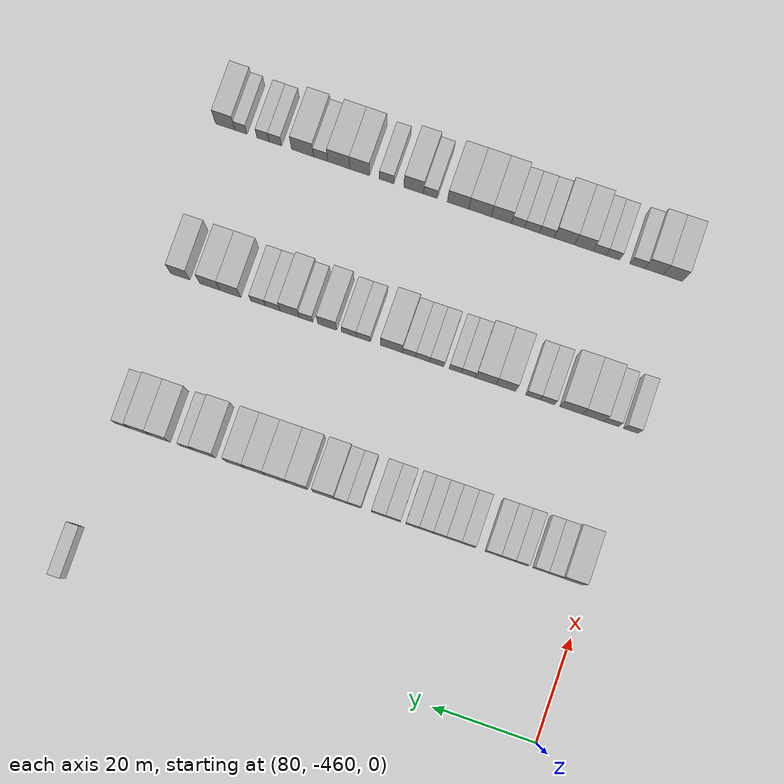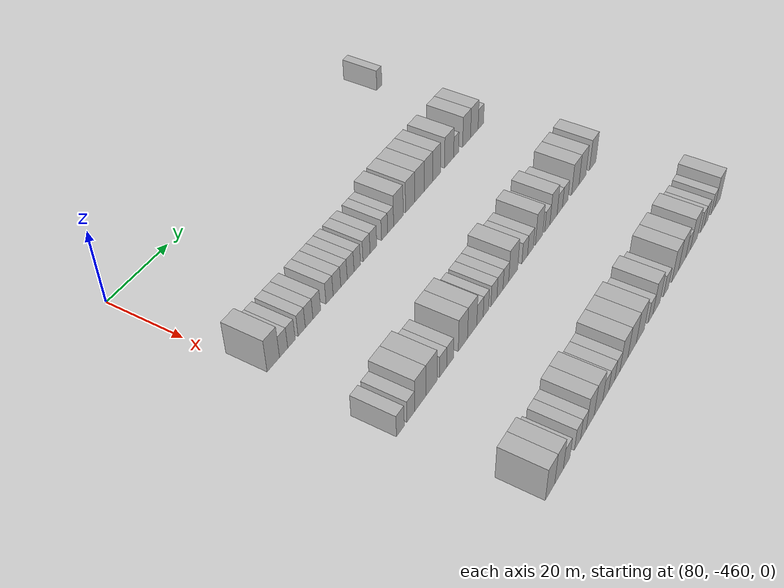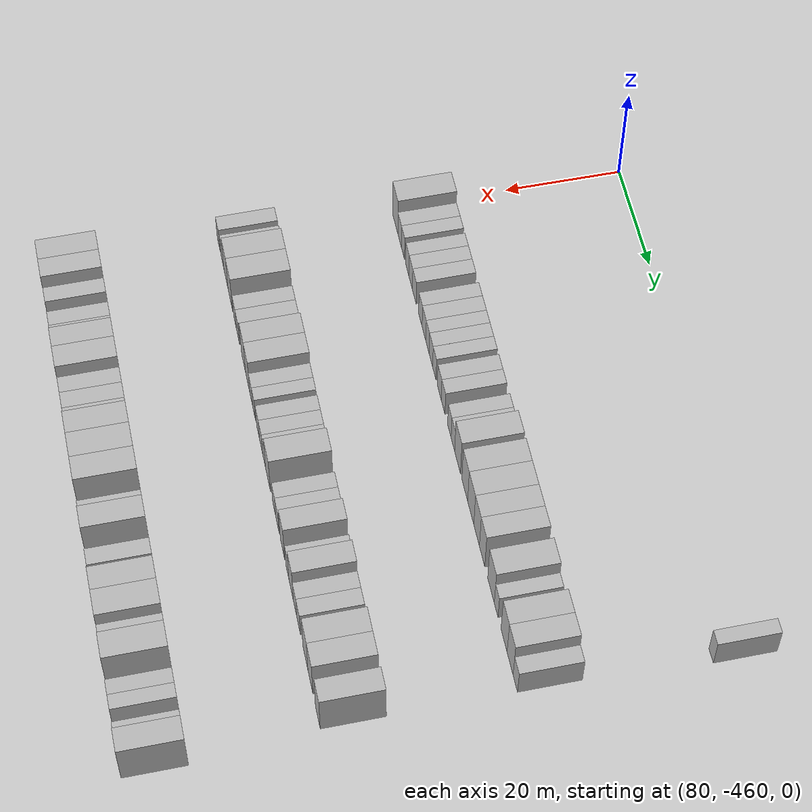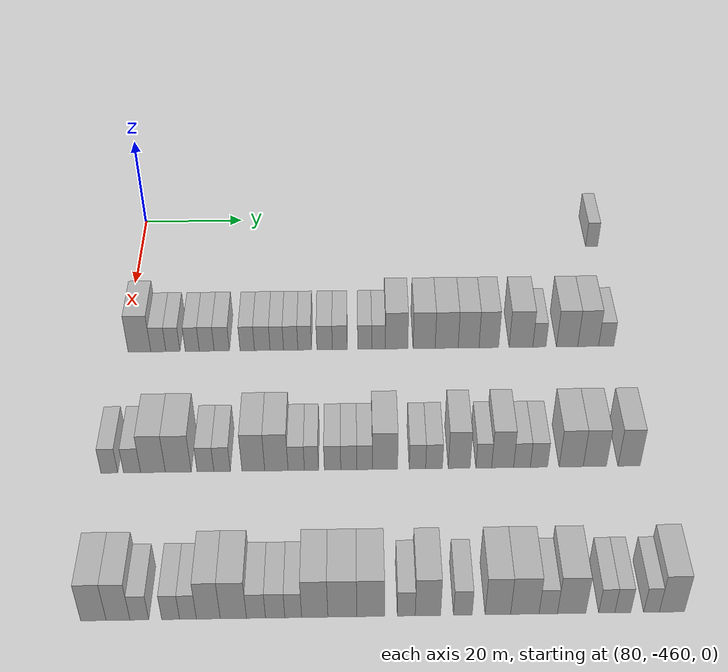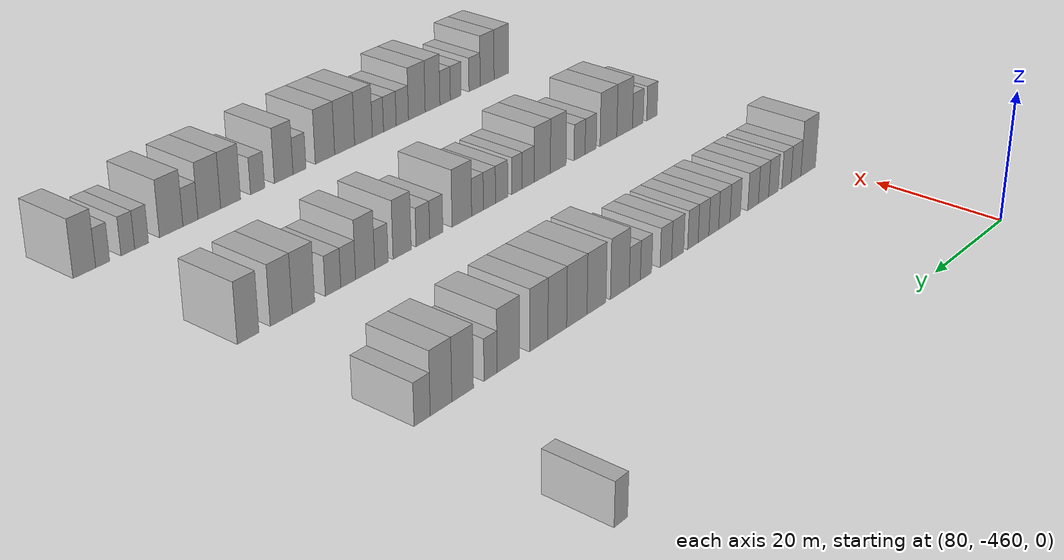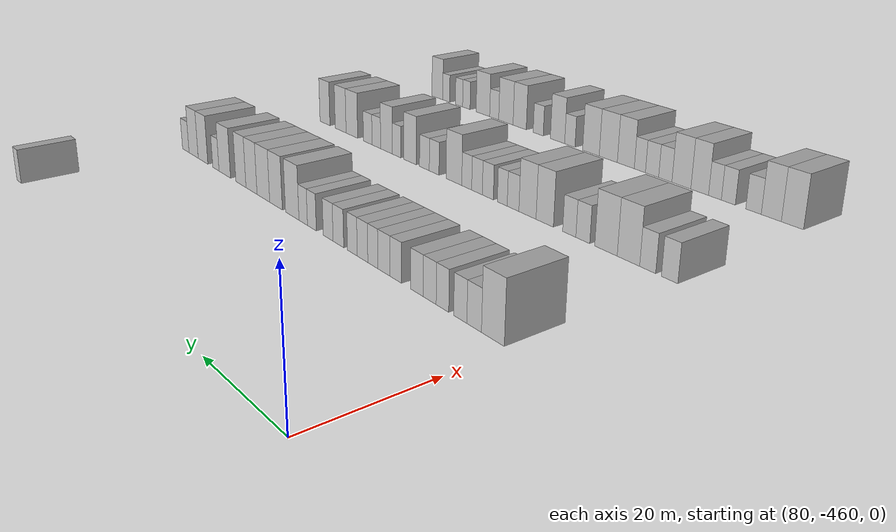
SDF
<sdf version="1.6">
 <world name="default">
  <model name="building_503">
   <static>1</static>
   <pose>85.0000 -367.4415 0 0.000000 0.000000 0.000000</pose>
   <link name="link">
    <pose>0 0 3.00 0 0 0</pose>
    <collision name="collision"><geometry><box><size>10.0000 2.4752 6.0000</size></box></geometry></collision>
    <visual name="visual">
     <cast_shadows>0</cast_shadows>
     <geometry><box><size>10.0000 2.4752 6.0000</size></box></geometry>
     <material>
      <script>
       <uri>model://HANNAS_wall/materials/scripts</uri>
       <uri>model://HANNAS_wall/materials/textures</uri>
       <name>vrc/HANNAS_wall</name>
      </script>
     </material>
    </visual>
   </link>
  </model>
  <model name="building_714">
   <static>1</static>
   <pose>115.0000 -456.8783 0 0.000000 0.000000 0.000000</pose>
   <link name="link">
    <pose>0 0 4.50 0 0 0</pose>
    <collision name="collision"><geometry><box><size>10.0000 4.2435 9.0000</size></box></geometry></collision>
    <visual name="visual">
     <cast_shadows>0</cast_shadows>
     <geometry><box><size>10.0000 4.2435 9.0000</size></box></geometry>
     <material>
      <script>
       <uri>model://HANNAS_wall/materials/scripts</uri>
       <uri>model://HANNAS_wall/materials/textures</uri>
       <name>vrc/HANNAS_wall</name>
      </script>
     </material>
    </visual>
   </link>
  </model>
  <model name="building_715">
   <static>1</static>
   <pose>115.0000 -453.3384 0 0.000000 0.000000 0.000000</pose>
   <link name="link">
    <pose>0 0 3.00 0 0 0</pose>
    <collision name="collision"><geometry><box><size>10.0000 2.8363 6.0000</size></box></geometry></collision>
    <visual name="visual">
     <cast_shadows>0</cast_shadows>
     <geometry><box><size>10.0000 2.8363 6.0000</size></box></geometry>
     <material>
      <script>
       <uri>model://HANNAS_wall/materials/scripts</uri>
       <uri>model://HANNAS_wall/materials/textures</uri>
       <name>vrc/HANNAS_wall</name>
      </script>
     </material>
    </visual>
   </link>
  </model>
  <model name="building_716">
   <static>1</static>
   <pose>115.0000 -450.6026 0 0.000000 0.000000 0.000000</pose>
   <link name="link">
    <pose>0 0 3.00 0 0 0</pose>
    <collision name="collision"><geometry><box><size>10.0000 2.6352 6.0000</size></box></geometry></collision>
    <visual name="visual">
     <cast_shadows>0</cast_shadows>
     <geometry><box><size>10.0000 2.6352 6.0000</size></box></geometry>
     <material>
      <script>
       <uri>model://HANNAS_wall/materials/scripts</uri>
       <uri>model://HANNAS_wall/materials/textures</uri>
       <name>vrc/HANNAS_wall</name>
      </script>
     </material>
    </visual>
   </link>
  </model>
  <model name="building_717">
   <static>1</static>
   <pose>115.0000 -446.9677 0 0.000000 0.000000 0.000000</pose>
   <link name="link">
    <pose>0 0 3.00 0 0 0</pose>
    <collision name="collision"><geometry><box><size>10.0000 2.6348 6.0000</size></box></geometry></collision>
    <visual name="visual">
     <cast_shadows>0</cast_shadows>
     <geometry><box><size>10.0000 2.6348 6.0000</size></box></geometry>
     <material>
      <script>
       <uri>model://HANNAS_wall/materials/scripts</uri>
       <uri>model://HANNAS_wall/materials/textures</uri>
       <name>vrc/HANNAS_wall</name>
      </script>
     </material>
    </visual>
   </link>
  </model>
  <model name="building_718">
   <static>1</static>
   <pose>115.0000 -444.2566 0 0.000000 0.000000 0.000000</pose>
   <link name="link">
    <pose>0 0 3.00 0 0 0</pose>
    <collision name="collision"><geometry><box><size>10.0000 2.7873 6.0000</size></box></geometry></collision>
    <visual name="visual">
     <cast_shadows>0</cast_shadows>
     <geometry><box><size>10.0000 2.7873 6.0000</size></box></geometry>
     <material>
      <script>
       <uri>model://HANNAS_wall/materials/scripts</uri>
       <uri>model://HANNAS_wall/materials/textures</uri>
       <name>vrc/HANNAS_wall</name>
      </script>
     </material>
    </visual>
   </link>
  </model>
  <model name="building_719">
   <static>1</static>
   <pose>115.0000 -441.4280 0 0.000000 0.000000 0.000000</pose>
   <link name="link">
    <pose>0 0 3.00 0 0 0</pose>
    <collision name="collision"><geometry><box><size>10.0000 2.8700 6.0000</size></box></geometry></collision>
    <visual name="visual">
     <cast_shadows>0</cast_shadows>
     <geometry><box><size>10.0000 2.8700 6.0000</size></box></geometry>
     <material>
      <script>
       <uri>model://HANNAS_wall/materials/scripts</uri>
       <uri>model://HANNAS_wall/materials/textures</uri>
       <name>vrc/HANNAS_wall</name>
      </script>
     </material>
    </visual>
   </link>
  </model>
  <model name="building_720">
   <static>1</static>
   <pose>115.0000 -436.6398 0 0.000000 0.000000 0.000000</pose>
   <link name="link">
    <pose>0 0 3.00 0 0 0</pose>
    <collision name="collision"><geometry><box><size>10.0000 2.7066 6.0000</size></box></geometry></collision>
    <visual name="visual">
     <cast_shadows>0</cast_shadows>
     <geometry><box><size>10.0000 2.7066 6.0000</size></box></geometry>
     <material>
      <script>
       <uri>model://HANNAS_wall/materials/scripts</uri>
       <uri>model://HANNAS_wall/materials/textures</uri>
       <name>vrc/HANNAS_wall</name>
      </script>
     </material>
    </visual>
   </link>
  </model>
  <model name="building_721">
   <static>1</static>
   <pose>115.0000 -433.8154 0 0.000000 0.000000 0.000000</pose>
   <link name="link">
    <pose>0 0 3.00 0 0 0</pose>
    <collision name="collision"><geometry><box><size>10.0000 2.9422 6.0000</size></box></geometry></collision>
    <visual name="visual">
     <cast_shadows>0</cast_shadows>
     <geometry><box><size>10.0000 2.9422 6.0000</size></box></geometry>
     <material>
      <script>
       <uri>model://HANNAS_wall/materials/scripts</uri>
       <uri>model://HANNAS_wall/materials/textures</uri>
       <name>vrc/HANNAS_wall</name>
      </script>
     </material>
    </visual>
   </link>
  </model>
  <model name="building_722">
   <static>1</static>
   <pose>115.0000 -431.0841 0 0.000000 0.000000 0.000000</pose>
   <link name="link">
    <pose>0 0 3.00 0 0 0</pose>
    <collision name="collision"><geometry><box><size>10.0000 2.5202 6.0000</size></box></geometry></collision>
    <visual name="visual">
     <cast_shadows>0</cast_shadows>
     <geometry><box><size>10.0000 2.5202 6.0000</size></box></geometry>
     <material>
      <script>
       <uri>model://HANNAS_wall/materials/scripts</uri>
       <uri>model://HANNAS_wall/materials/textures</uri>
       <name>vrc/HANNAS_wall</name>
      </script>
     </material>
    </visual>
   </link>
  </model>
  <model name="building_723">
   <static>1</static>
   <pose>115.0000 -428.4706 0 0.000000 0.000000 0.000000</pose>
   <link name="link">
    <pose>0 0 3.00 0 0 0</pose>
    <collision name="collision"><geometry><box><size>10.0000 2.7069 6.0000</size></box></geometry></collision>
    <visual name="visual">
     <cast_shadows>0</cast_shadows>
     <geometry><box><size>10.0000 2.7069 6.0000</size></box></geometry>
     <material>
      <script>
       <uri>model://HANNAS_wall/materials/scripts</uri>
       <uri>model://HANNAS_wall/materials/textures</uri>
       <name>vrc/HANNAS_wall</name>
      </script>
     </material>
    </visual>
   </link>
  </model>
  <model name="building_724">
   <static>1</static>
   <pose>115.0000 -425.8266 0 0.000000 0.000000 0.000000</pose>
   <link name="link">
    <pose>0 0 3.00 0 0 0</pose>
    <collision name="collision"><geometry><box><size>10.0000 2.5810 6.0000</size></box></geometry></collision>
    <visual name="visual">
     <cast_shadows>0</cast_shadows>
     <geometry><box><size>10.0000 2.5810 6.0000</size></box></geometry>
     <material>
      <script>
       <uri>model://HANNAS_wall/materials/scripts</uri>
       <uri>model://HANNAS_wall/materials/textures</uri>
       <name>vrc/HANNAS_wall</name>
      </script>
     </material>
    </visual>
   </link>
  </model>
  <model name="building_725">
   <static>1</static>
   <pose>115.0000 -422.0777 0 0.000000 0.000000 0.000000</pose>
   <link name="link">
    <pose>0 0 3.00 0 0 0</pose>
    <collision name="collision"><geometry><box><size>10.0000 2.9168 6.0000</size></box></geometry></collision>
    <visual name="visual">
     <cast_shadows>0</cast_shadows>
     <geometry><box><size>10.0000 2.9168 6.0000</size></box></geometry>
     <material>
      <script>
       <uri>model://HANNAS_wall/materials/scripts</uri>
       <uri>model://HANNAS_wall/materials/textures</uri>
       <name>vrc/HANNAS_wall</name>
      </script>
     </material>
    </visual>
   </link>
  </model>
  <model name="building_726">
   <static>1</static>
   <pose>115.0000 -419.2322 0 0.000000 0.000000 0.000000</pose>
   <link name="link">
    <pose>0 0 3.00 0 0 0</pose>
    <collision name="collision"><geometry><box><size>10.0000 2.7742 6.0000</size></box></geometry></collision>
    <visual name="visual">
     <cast_shadows>0</cast_shadows>
     <geometry><box><size>10.0000 2.7742 6.0000</size></box></geometry>
     <material>
      <script>
       <uri>model://HANNAS_wall/materials/scripts</uri>
       <uri>model://HANNAS_wall/materials/textures</uri>
       <name>vrc/HANNAS_wall</name>
      </script>
     </material>
    </visual>
   </link>
  </model>
  <model name="building_727">
   <static>1</static>
   <pose>115.0000 -414.5325 0 0.000000 0.000000 0.000000</pose>
   <link name="link">
    <pose>0 0 3.00 0 0 0</pose>
    <collision name="collision"><geometry><box><size>10.0000 2.6252 6.0000</size></box></geometry></collision>
    <visual name="visual">
     <cast_shadows>0</cast_shadows>
     <geometry><box><size>10.0000 2.6252 6.0000</size></box></geometry>
     <material>
      <script>
       <uri>model://HANNAS_wall/materials/scripts</uri>
       <uri>model://HANNAS_wall/materials/textures</uri>
       <name>vrc/HANNAS_wall</name>
      </script>
     </material>
    </visual>
   </link>
  </model>
  <model name="building_728">
   <static>1</static>
   <pose>115.0000 -411.9328 0 0.000000 0.000000 0.000000</pose>
   <link name="link">
    <pose>0 0 3.00 0 0 0</pose>
    <collision name="collision"><geometry><box><size>10.0000 2.5741 6.0000</size></box></geometry></collision>
    <visual name="visual">
     <cast_shadows>0</cast_shadows>
     <geometry><box><size>10.0000 2.5741 6.0000</size></box></geometry>
     <material>
      <script>
       <uri>model://HANNAS_wall/materials/scripts</uri>
       <uri>model://HANNAS_wall/materials/textures</uri>
       <name>vrc/HANNAS_wall</name>
      </script>
     </material>
    </visual>
   </link>
  </model>
  <model name="building_729">
   <static>1</static>
   <pose>115.0000 -408.5332 0 0.000000 0.000000 0.000000</pose>
   <link name="link">
    <pose>0 0 4.50 0 0 0</pose>
    <collision name="collision"><geometry><box><size>10.0000 4.2251 9.0000</size></box></geometry></collision>
    <visual name="visual">
     <cast_shadows>0</cast_shadows>
     <geometry><box><size>10.0000 4.2251 9.0000</size></box></geometry>
     <material>
      <script>
       <uri>model://HANNAS_wall/materials/scripts</uri>
       <uri>model://HANNAS_wall/materials/textures</uri>
       <name>vrc/HANNAS_wall</name>
      </script>
     </material>
    </visual>
   </link>
  </model>
  <model name="building_730">
   <static>1</static>
   <pose>115.0000 -403.3415 0 0.000000 0.000000 0.000000</pose>
   <link name="link">
    <pose>0 0 4.50 0 0 0</pose>
    <collision name="collision"><geometry><box><size>10.0000 4.1584 9.0000</size></box></geometry></collision>
    <visual name="visual">
     <cast_shadows>0</cast_shadows>
     <geometry><box><size>10.0000 4.1584 9.0000</size></box></geometry>
     <material>
      <script>
       <uri>model://HANNAS_wall/materials/scripts</uri>
       <uri>model://HANNAS_wall/materials/textures</uri>
       <name>vrc/HANNAS_wall</name>
      </script>
     </material>
    </visual>
   </link>
  </model>
  <model name="building_731">
   <static>1</static>
   <pose>115.0000 -399.0946 0 0.000000 0.000000 0.000000</pose>
   <link name="link">
    <pose>0 0 4.50 0 0 0</pose>
    <collision name="collision"><geometry><box><size>10.0000 4.3356 9.0000</size></box></geometry></collision>
    <visual name="visual">
     <cast_shadows>0</cast_shadows>
     <geometry><box><size>10.0000 4.3356 9.0000</size></box></geometry>
     <material>
      <script>
       <uri>model://HANNAS_wall/materials/scripts</uri>
       <uri>model://HANNAS_wall/materials/textures</uri>
       <name>vrc/HANNAS_wall</name>
      </script>
     </material>
    </visual>
   </link>
  </model>
  <model name="building_732">
   <static>1</static>
   <pose>115.0000 -394.9612 0 0.000000 0.000000 0.000000</pose>
   <link name="link">
    <pose>0 0 4.50 0 0 0</pose>
    <collision name="collision"><geometry><box><size>10.0000 3.9311 9.0000</size></box></geometry></collision>
    <visual name="visual">
     <cast_shadows>0</cast_shadows>
     <geometry><box><size>10.0000 3.9311 9.0000</size></box></geometry>
     <material>
      <script>
       <uri>model://HANNAS_wall/materials/scripts</uri>
       <uri>model://HANNAS_wall/materials/textures</uri>
       <name>vrc/HANNAS_wall</name>
      </script>
     </material>
    </visual>
   </link>
  </model>
  <model name="building_733">
   <static>1</static>
   <pose>115.0000 -391.1428 0 0.000000 0.000000 0.000000</pose>
   <link name="link">
    <pose>0 0 4.50 0 0 0</pose>
    <collision name="collision"><geometry><box><size>10.0000 3.7057 9.0000</size></box></geometry></collision>
    <visual name="visual">
     <cast_shadows>0</cast_shadows>
     <geometry><box><size>10.0000 3.7057 9.0000</size></box></geometry>
     <material>
      <script>
       <uri>model://HANNAS_wall/materials/scripts</uri>
       <uri>model://HANNAS_wall/materials/textures</uri>
       <name>vrc/HANNAS_wall</name>
      </script>
     </material>
    </visual>
   </link>
  </model>
  <model name="building_734">
   <static>1</static>
   <pose>115.0000 -385.0547 0 0.000000 0.000000 0.000000</pose>
   <link name="link">
    <pose>0 0 4.50 0 0 0</pose>
    <collision name="collision"><geometry><box><size>10.0000 4.4705 9.0000</size></box></geometry></collision>
    <visual name="visual">
     <cast_shadows>0</cast_shadows>
     <geometry><box><size>10.0000 4.4705 9.0000</size></box></geometry>
     <material>
      <script>
       <uri>model://HANNAS_wall/materials/scripts</uri>
       <uri>model://HANNAS_wall/materials/textures</uri>
       <name>vrc/HANNAS_wall</name>
      </script>
     </material>
    </visual>
   </link>
  </model>
  <model name="building_735">
   <static>1</static>
   <pose>115.0000 -381.5741 0 0.000000 0.000000 0.000000</pose>
   <link name="link">
    <pose>0 0 3.00 0 0 0</pose>
    <collision name="collision"><geometry><box><size>10.0000 2.4907 6.0000</size></box></geometry></collision>
    <visual name="visual">
     <cast_shadows>0</cast_shadows>
     <geometry><box><size>10.0000 2.4907 6.0000</size></box></geometry>
     <material>
      <script>
       <uri>model://HANNAS_wall/materials/scripts</uri>
       <uri>model://HANNAS_wall/materials/textures</uri>
       <name>vrc/HANNAS_wall</name>
      </script>
     </material>
    </visual>
   </link>
  </model>
  <model name="building_736">
   <static>1</static>
   <pose>115.0000 -376.3211 0 0.000000 0.000000 0.000000</pose>
   <link name="link">
    <pose>0 0 4.50 0 0 0</pose>
    <collision name="collision"><geometry><box><size>10.0000 4.0153 9.0000</size></box></geometry></collision>
    <visual name="visual">
     <cast_shadows>0</cast_shadows>
     <geometry><box><size>10.0000 4.0153 9.0000</size></box></geometry>
     <material>
      <script>
       <uri>model://HANNAS_wall/materials/scripts</uri>
       <uri>model://HANNAS_wall/materials/textures</uri>
       <name>vrc/HANNAS_wall</name>
      </script>
     </material>
    </visual>
   </link>
  </model>
  <model name="building_737">
   <static>1</static>
   <pose>115.0000 -372.3457 0 0.000000 0.000000 0.000000</pose>
   <link name="link">
    <pose>0 0 4.50 0 0 0</pose>
    <collision name="collision"><geometry><box><size>10.0000 3.9354 9.0000</size></box></geometry></collision>
    <visual name="visual">
     <cast_shadows>0</cast_shadows>
     <geometry><box><size>10.0000 3.9354 9.0000</size></box></geometry>
     <material>
      <script>
       <uri>model://HANNAS_wall/materials/scripts</uri>
       <uri>model://HANNAS_wall/materials/textures</uri>
       <name>vrc/HANNAS_wall</name>
      </script>
     </material>
    </visual>
   </link>
  </model>
  <model name="building_738">
   <static>1</static>
   <pose>115.0000 -368.9343 0 0.000000 0.000000 0.000000</pose>
   <link name="link">
    <pose>0 0 3.00 0 0 0</pose>
    <collision name="collision"><geometry><box><size>10.0000 2.8873 6.0000</size></box></geometry></collision>
    <visual name="visual">
     <cast_shadows>0</cast_shadows>
     <geometry><box><size>10.0000 2.8873 6.0000</size></box></geometry>
     <material>
      <script>
       <uri>model://HANNAS_wall/materials/scripts</uri>
       <uri>model://HANNAS_wall/materials/textures</uri>
       <name>vrc/HANNAS_wall</name>
      </script>
     </material>
    </visual>
   </link>
  </model>
  <model name="building_951">
   <static>1</static>
   <pose>145.0000 -458.5672 0 0.000000 0.000000 0.000000</pose>
   <link name="link">
    <pose>0 0 3.00 0 0 0</pose>
    <collision name="collision"><geometry><box><size>10.0000 2.8656 6.0000</size></box></geometry></collision>
    <visual name="visual">
     <cast_shadows>0</cast_shadows>
     <geometry><box><size>10.0000 2.8656 6.0000</size></box></geometry>
     <material>
      <script>
       <uri>model://HANNAS_wall/materials/scripts</uri>
       <uri>model://HANNAS_wall/materials/textures</uri>
       <name>vrc/HANNAS_wall</name>
      </script>
     </material>
    </visual>
   </link>
  </model>
  <model name="building_952">
   <static>1</static>
   <pose>145.0000 -454.6830 0 0.000000 0.000000 0.000000</pose>
   <link name="link">
    <pose>0 0 3.00 0 0 0</pose>
    <collision name="collision"><geometry><box><size>10.0000 2.9029 6.0000</size></box></geometry></collision>
    <visual name="visual">
     <cast_shadows>0</cast_shadows>
     <geometry><box><size>10.0000 2.9029 6.0000</size></box></geometry>
     <material>
      <script>
       <uri>model://HANNAS_wall/materials/scripts</uri>
       <uri>model://HANNAS_wall/materials/textures</uri>
       <name>vrc/HANNAS_wall</name>
      </script>
     </material>
    </visual>
   </link>
  </model>
  <model name="building_953">
   <static>1</static>
   <pose>145.0000 -451.1205 0 0.000000 0.000000 0.000000</pose>
   <link name="link">
    <pose>0 0 4.50 0 0 0</pose>
    <collision name="collision"><geometry><box><size>10.0000 4.2221 9.0000</size></box></geometry></collision>
    <visual name="visual">
     <cast_shadows>0</cast_shadows>
     <geometry><box><size>10.0000 4.2221 9.0000</size></box></geometry>
     <material>
      <script>
       <uri>model://HANNAS_wall/materials/scripts</uri>
       <uri>model://HANNAS_wall/materials/textures</uri>
       <name>vrc/HANNAS_wall</name>
      </script>
     </material>
    </visual>
   </link>
  </model>
  <model name="building_954">
   <static>1</static>
   <pose>145.0000 -446.7995 0 0.000000 0.000000 0.000000</pose>
   <link name="link">
    <pose>0 0 4.50 0 0 0</pose>
    <collision name="collision"><geometry><box><size>10.0000 4.4199 9.0000</size></box></geometry></collision>
    <visual name="visual">
     <cast_shadows>0</cast_shadows>
     <geometry><box><size>10.0000 4.4199 9.0000</size></box></geometry>
     <material>
      <script>
       <uri>model://HANNAS_wall/materials/scripts</uri>
       <uri>model://HANNAS_wall/materials/textures</uri>
       <name>vrc/HANNAS_wall</name>
      </script>
     </material>
    </visual>
   </link>
  </model>
  <model name="building_955">
   <static>1</static>
   <pose>145.0000 -442.1548 0 0.000000 0.000000 0.000000</pose>
   <link name="link">
    <pose>0 0 3.00 0 0 0</pose>
    <collision name="collision"><geometry><box><size>10.0000 2.8695 6.0000</size></box></geometry></collision>
    <visual name="visual">
     <cast_shadows>0</cast_shadows>
     <geometry><box><size>10.0000 2.8695 6.0000</size></box></geometry>
     <material>
      <script>
       <uri>model://HANNAS_wall/materials/scripts</uri>
       <uri>model://HANNAS_wall/materials/textures</uri>
       <name>vrc/HANNAS_wall</name>
      </script>
     </material>
    </visual>
   </link>
  </model>
  <model name="building_956">
   <static>1</static>
   <pose>145.0000 -439.3157 0 0.000000 0.000000 0.000000</pose>
   <link name="link">
    <pose>0 0 3.00 0 0 0</pose>
    <collision name="collision"><geometry><box><size>10.0000 2.8087 6.0000</size></box></geometry></collision>
    <visual name="visual">
     <cast_shadows>0</cast_shadows>
     <geometry><box><size>10.0000 2.8087 6.0000</size></box></geometry>
     <material>
      <script>
       <uri>model://HANNAS_wall/materials/scripts</uri>
       <uri>model://HANNAS_wall/materials/textures</uri>
       <name>vrc/HANNAS_wall</name>
      </script>
     </material>
    </visual>
   </link>
  </model>
  <model name="building_957">
   <static>1</static>
   <pose>145.0000 -433.9685 0 0.000000 0.000000 0.000000</pose>
   <link name="link">
    <pose>0 0 4.50 0 0 0</pose>
    <collision name="collision"><geometry><box><size>10.0000 3.8858 9.0000</size></box></geometry></collision>
    <visual name="visual">
     <cast_shadows>0</cast_shadows>
     <geometry><box><size>10.0000 3.8858 9.0000</size></box></geometry>
     <material>
      <script>
       <uri>model://HANNAS_wall/materials/scripts</uri>
       <uri>model://HANNAS_wall/materials/textures</uri>
       <name>vrc/HANNAS_wall</name>
      </script>
     </material>
    </visual>
   </link>
  </model>
  <model name="building_958">
   <static>1</static>
   <pose>145.0000 -430.0322 0 0.000000 0.000000 0.000000</pose>
   <link name="link">
    <pose>0 0 4.50 0 0 0</pose>
    <collision name="collision"><geometry><box><size>10.0000 3.9868 9.0000</size></box></geometry></collision>
    <visual name="visual">
     <cast_shadows>0</cast_shadows>
     <geometry><box><size>10.0000 3.9868 9.0000</size></box></geometry>
     <material>
      <script>
       <uri>model://HANNAS_wall/materials/scripts</uri>
       <uri>model://HANNAS_wall/materials/textures</uri>
       <name>vrc/HANNAS_wall</name>
      </script>
     </material>
    </visual>
   </link>
  </model>
  <model name="building_959">
   <static>1</static>
   <pose>145.0000 -426.6387 0 0.000000 0.000000 0.000000</pose>
   <link name="link">
    <pose>0 0 3.00 0 0 0</pose>
    <collision name="collision"><geometry><box><size>10.0000 2.8001 6.0000</size></box></geometry></collision>
    <visual name="visual">
     <cast_shadows>0</cast_shadows>
     <geometry><box><size>10.0000 2.8001 6.0000</size></box></geometry>
     <material>
      <script>
       <uri>model://HANNAS_wall/materials/scripts</uri>
       <uri>model://HANNAS_wall/materials/textures</uri>
       <name>vrc/HANNAS_wall</name>
      </script>
     </material>
    </visual>
   </link>
  </model>
  <model name="building_960">
   <static>1</static>
   <pose>145.0000 -424.0277 0 0.000000 0.000000 0.000000</pose>
   <link name="link">
    <pose>0 0 3.00 0 0 0</pose>
    <collision name="collision"><geometry><box><size>10.0000 2.4220 6.0000</size></box></geometry></collision>
    <visual name="visual">
     <cast_shadows>0</cast_shadows>
     <geometry><box><size>10.0000 2.4220 6.0000</size></box></geometry>
     <material>
      <script>
       <uri>model://HANNAS_wall/materials/scripts</uri>
       <uri>model://HANNAS_wall/materials/textures</uri>
       <name>vrc/HANNAS_wall</name>
      </script>
     </material>
    </visual>
   </link>
  </model>
  <model name="building_961">
   <static>1</static>
   <pose>145.0000 -420.4117 0 0.000000 0.000000 0.000000</pose>
   <link name="link">
    <pose>0 0 3.00 0 0 0</pose>
    <collision name="collision"><geometry><box><size>10.0000 2.8100 6.0000</size></box></geometry></collision>
    <visual name="visual">
     <cast_shadows>0</cast_shadows>
     <geometry><box><size>10.0000 2.8100 6.0000</size></box></geometry>
     <material>
      <script>
       <uri>model://HANNAS_wall/materials/scripts</uri>
       <uri>model://HANNAS_wall/materials/textures</uri>
       <name>vrc/HANNAS_wall</name>
      </script>
     </material>
    </visual>
   </link>
  </model>
  <model name="building_962">
   <static>1</static>
   <pose>145.0000 -417.6250 0 0.000000 0.000000 0.000000</pose>
   <link name="link">
    <pose>0 0 3.00 0 0 0</pose>
    <collision name="collision"><geometry><box><size>10.0000 2.7634 6.0000</size></box></geometry></collision>
    <visual name="visual">
     <cast_shadows>0</cast_shadows>
     <geometry><box><size>10.0000 2.7634 6.0000</size></box></geometry>
     <material>
      <script>
       <uri>model://HANNAS_wall/materials/scripts</uri>
       <uri>model://HANNAS_wall/materials/textures</uri>
       <name>vrc/HANNAS_wall</name>
      </script>
     </material>
    </visual>
   </link>
  </model>
  <model name="building_963">
   <static>1</static>
   <pose>145.0000 -414.9228 0 0.000000 0.000000 0.000000</pose>
   <link name="link">
    <pose>0 0 3.00 0 0 0</pose>
    <collision name="collision"><geometry><box><size>10.0000 2.6410 6.0000</size></box></geometry></collision>
    <visual name="visual">
     <cast_shadows>0</cast_shadows>
     <geometry><box><size>10.0000 2.6410 6.0000</size></box></geometry>
     <material>
      <script>
       <uri>model://HANNAS_wall/materials/scripts</uri>
       <uri>model://HANNAS_wall/materials/textures</uri>
       <name>vrc/HANNAS_wall</name>
      </script>
     </material>
    </visual>
   </link>
  </model>
  <model name="building_964">
   <static>1</static>
   <pose>145.0000 -411.4430 0 0.000000 0.000000 0.000000</pose>
   <link name="link">
    <pose>0 0 4.50 0 0 0</pose>
    <collision name="collision"><geometry><box><size>10.0000 4.3187 9.0000</size></box></geometry></collision>
    <visual name="visual">
     <cast_shadows>0</cast_shadows>
     <geometry><box><size>10.0000 4.3187 9.0000</size></box></geometry>
     <material>
      <script>
       <uri>model://HANNAS_wall/materials/scripts</uri>
       <uri>model://HANNAS_wall/materials/textures</uri>
       <name>vrc/HANNAS_wall</name>
      </script>
     </material>
    </visual>
   </link>
  </model>
  <model name="building_965">
   <static>1</static>
   <pose>145.0000 -405.8777 0 0.000000 0.000000 0.000000</pose>
   <link name="link">
    <pose>0 0 3.00 0 0 0</pose>
    <collision name="collision"><geometry><box><size>10.0000 2.8120 6.0000</size></box></geometry></collision>
    <visual name="visual">
     <cast_shadows>0</cast_shadows>
     <geometry><box><size>10.0000 2.8120 6.0000</size></box></geometry>
     <material>
      <script>
       <uri>model://HANNAS_wall/materials/scripts</uri>
       <uri>model://HANNAS_wall/materials/textures</uri>
       <name>vrc/HANNAS_wall</name>
      </script>
     </material>
    </visual>
   </link>
  </model>
  <model name="building_966">
   <static>1</static>
   <pose>145.0000 -403.0285 0 0.000000 0.000000 0.000000</pose>
   <link name="link">
    <pose>0 0 3.00 0 0 0</pose>
    <collision name="collision"><geometry><box><size>10.0000 2.8864 6.0000</size></box></geometry></collision>
    <visual name="visual">
     <cast_shadows>0</cast_shadows>
     <geometry><box><size>10.0000 2.8864 6.0000</size></box></geometry>
     <material>
      <script>
       <uri>model://HANNAS_wall/materials/scripts</uri>
       <uri>model://HANNAS_wall/materials/textures</uri>
       <name>vrc/HANNAS_wall</name>
      </script>
     </material>
    </visual>
   </link>
  </model>
  <model name="building_967">
   <static>1</static>
   <pose>145.0000 -398.7162 0 0.000000 0.000000 0.000000</pose>
   <link name="link">
    <pose>0 0 4.50 0 0 0</pose>
    <collision name="collision"><geometry><box><size>10.0000 3.7381 9.0000</size></box></geometry></collision>
    <visual name="visual">
     <cast_shadows>0</cast_shadows>
     <geometry><box><size>10.0000 3.7381 9.0000</size></box></geometry>
     <material>
      <script>
       <uri>model://HANNAS_wall/materials/scripts</uri>
       <uri>model://HANNAS_wall/materials/textures</uri>
       <name>vrc/HANNAS_wall</name>
      </script>
     </material>
    </visual>
   </link>
  </model>
  <model name="building_968">
   <static>1</static>
   <pose>145.0000 -394.4947 0 0.000000 0.000000 0.000000</pose>
   <link name="link">
    <pose>0 0 3.00 0 0 0</pose>
    <collision name="collision"><geometry><box><size>10.0000 2.7049 6.0000</size></box></geometry></collision>
    <visual name="visual">
     <cast_shadows>0</cast_shadows>
     <geometry><box><size>10.0000 2.7049 6.0000</size></box></geometry>
     <material>
      <script>
       <uri>model://HANNAS_wall/materials/scripts</uri>
       <uri>model://HANNAS_wall/materials/textures</uri>
       <name>vrc/HANNAS_wall</name>
      </script>
     </material>
    </visual>
   </link>
  </model>
  <model name="building_969">
   <static>1</static>
   <pose>145.0000 -391.2525 0 0.000000 0.000000 0.000000</pose>
   <link name="link">
    <pose>0 0 4.50 0 0 0</pose>
    <collision name="collision"><geometry><box><size>10.0000 3.7796 9.0000</size></box></geometry></collision>
    <visual name="visual">
     <cast_shadows>0</cast_shadows>
     <geometry><box><size>10.0000 3.7796 9.0000</size></box></geometry>
     <material>
      <script>
       <uri>model://HANNAS_wall/materials/scripts</uri>
       <uri>model://HANNAS_wall/materials/textures</uri>
       <name>vrc/HANNAS_wall</name>
      </script>
     </material>
    </visual>
   </link>
  </model>
  <model name="building_970">
   <static>1</static>
   <pose>145.0000 -387.9256 0 0.000000 0.000000 0.000000</pose>
   <link name="link">
    <pose>0 0 3.00 0 0 0</pose>
    <collision name="collision"><geometry><box><size>10.0000 2.8741 6.0000</size></box></geometry></collision>
    <visual name="visual">
     <cast_shadows>0</cast_shadows>
     <geometry><box><size>10.0000 2.8741 6.0000</size></box></geometry>
     <material>
      <script>
       <uri>model://HANNAS_wall/materials/scripts</uri>
       <uri>model://HANNAS_wall/materials/textures</uri>
       <name>vrc/HANNAS_wall</name>
      </script>
     </material>
    </visual>
   </link>
  </model>
  <model name="building_971">
   <static>1</static>
   <pose>145.0000 -385.0101 0 0.000000 0.000000 0.000000</pose>
   <link name="link">
    <pose>0 0 3.00 0 0 0</pose>
    <collision name="collision"><geometry><box><size>10.0000 2.9569 6.0000</size></box></geometry></collision>
    <visual name="visual">
     <cast_shadows>0</cast_shadows>
     <geometry><box><size>10.0000 2.9569 6.0000</size></box></geometry>
     <material>
      <script>
       <uri>model://HANNAS_wall/materials/scripts</uri>
       <uri>model://HANNAS_wall/materials/textures</uri>
       <name>vrc/HANNAS_wall</name>
      </script>
     </material>
    </visual>
   </link>
  </model>
  <model name="building_972">
   <static>1</static>
   <pose>145.0000 -379.4606 0 0.000000 0.000000 0.000000</pose>
   <link name="link">
    <pose>0 0 4.50 0 0 0</pose>
    <collision name="collision"><geometry><box><size>10.0000 4.1421 9.0000</size></box></geometry></collision>
    <visual name="visual">
     <cast_shadows>0</cast_shadows>
     <geometry><box><size>10.0000 4.1421 9.0000</size></box></geometry>
     <material>
      <script>
       <uri>model://HANNAS_wall/materials/scripts</uri>
       <uri>model://HANNAS_wall/materials/textures</uri>
       <name>vrc/HANNAS_wall</name>
      </script>
     </material>
    </visual>
   </link>
  </model>
  <model name="building_973">
   <static>1</static>
   <pose>145.0000 -375.3927 0 0.000000 0.000000 0.000000</pose>
   <link name="link">
    <pose>0 0 4.50 0 0 0</pose>
    <collision name="collision"><geometry><box><size>10.0000 3.9939 9.0000</size></box></geometry></collision>
    <visual name="visual">
     <cast_shadows>0</cast_shadows>
     <geometry><box><size>10.0000 3.9939 9.0000</size></box></geometry>
     <material>
      <script>
       <uri>model://HANNAS_wall/materials/scripts</uri>
       <uri>model://HANNAS_wall/materials/textures</uri>
       <name>vrc/HANNAS_wall</name>
      </script>
     </material>
    </visual>
   </link>
  </model>
  <model name="building_974">
   <static>1</static>
   <pose>145.0000 -369.4916 0 0.000000 0.000000 0.000000</pose>
   <link name="link">
    <pose>0 0 4.50 0 0 0</pose>
    <collision name="collision"><geometry><box><size>10.0000 3.8082 9.0000</size></box></geometry></collision>
    <visual name="visual">
     <cast_shadows>0</cast_shadows>
     <geometry><box><size>10.0000 3.8082 9.0000</size></box></geometry>
     <material>
      <script>
       <uri>model://HANNAS_wall/materials/scripts</uri>
       <uri>model://HANNAS_wall/materials/textures</uri>
       <name>vrc/HANNAS_wall</name>
      </script>
     </material>
    </visual>
   </link>
  </model>
  <model name="building_1189">
   <static>1</static>
   <pose>175.0000 -457.0465 0 0.000000 0.000000 0.000000</pose>
   <link name="link">
    <pose>0 0 4.50 0 0 0</pose>
    <collision name="collision"><geometry><box><size>10.0000 3.9071 9.0000</size></box></geometry></collision>
    <visual name="visual">
     <cast_shadows>0</cast_shadows>
     <geometry><box><size>10.0000 3.9071 9.0000</size></box></geometry>
     <material>
      <script>
       <uri>model://HANNAS_wall/materials/scripts</uri>
       <uri>model://HANNAS_wall/materials/textures</uri>
       <name>vrc/HANNAS_wall</name>
      </script>
     </material>
    </visual>
   </link>
  </model>
  <model name="building_1190">
   <static>1</static>
   <pose>175.0000 -453.2652 0 0.000000 0.000000 0.000000</pose>
   <link name="link">
    <pose>0 0 4.50 0 0 0</pose>
    <collision name="collision"><geometry><box><size>10.0000 3.6554 9.0000</size></box></geometry></collision>
    <visual name="visual">
     <cast_shadows>0</cast_shadows>
     <geometry><box><size>10.0000 3.6554 9.0000</size></box></geometry>
     <material>
      <script>
       <uri>model://HANNAS_wall/materials/scripts</uri>
       <uri>model://HANNAS_wall/materials/textures</uri>
       <name>vrc/HANNAS_wall</name>
      </script>
     </material>
    </visual>
   </link>
  </model>
  <model name="building_1191">
   <static>1</static>
   <pose>175.0000 -449.9889 0 0.000000 0.000000 0.000000</pose>
   <link name="link">
    <pose>0 0 3.00 0 0 0</pose>
    <collision name="collision"><geometry><box><size>10.0000 2.8972 6.0000</size></box></geometry></collision>
    <visual name="visual">
     <cast_shadows>0</cast_shadows>
     <geometry><box><size>10.0000 2.8972 6.0000</size></box></geometry>
     <material>
      <script>
       <uri>model://HANNAS_wall/materials/scripts</uri>
       <uri>model://HANNAS_wall/materials/textures</uri>
       <name>vrc/HANNAS_wall</name>
      </script>
     </material>
    </visual>
   </link>
  </model>
  <model name="building_1192">
   <static>1</static>
   <pose>175.0000 -445.1686 0 0.000000 0.000000 0.000000</pose>
   <link name="link">
    <pose>0 0 3.00 0 0 0</pose>
    <collision name="collision"><geometry><box><size>10.0000 2.7434 6.0000</size></box></geometry></collision>
    <visual name="visual">
     <cast_shadows>0</cast_shadows>
     <geometry><box><size>10.0000 2.7434 6.0000</size></box></geometry>
     <material>
      <script>
       <uri>model://HANNAS_wall/materials/scripts</uri>
       <uri>model://HANNAS_wall/materials/textures</uri>
       <name>vrc/HANNAS_wall</name>
      </script>
     </material>
    </visual>
   </link>
  </model>
  <model name="building_1193">
   <static>1</static>
   <pose>175.0000 -442.5055 0 0.000000 0.000000 0.000000</pose>
   <link name="link">
    <pose>0 0 3.00 0 0 0</pose>
    <collision name="collision"><geometry><box><size>10.0000 2.5828 6.0000</size></box></geometry></collision>
    <visual name="visual">
     <cast_shadows>0</cast_shadows>
     <geometry><box><size>10.0000 2.5828 6.0000</size></box></geometry>
     <material>
      <script>
       <uri>model://HANNAS_wall/materials/scripts</uri>
       <uri>model://HANNAS_wall/materials/textures</uri>
       <name>vrc/HANNAS_wall</name>
      </script>
     </material>
    </visual>
   </link>
  </model>
  <model name="building_1194">
   <static>1</static>
   <pose>175.0000 -439.3865 0 0.000000 0.000000 0.000000</pose>
   <link name="link">
    <pose>0 0 4.50 0 0 0</pose>
    <collision name="collision"><geometry><box><size>10.0000 3.6552 9.0000</size></box></geometry></collision>
    <visual name="visual">
     <cast_shadows>0</cast_shadows>
     <geometry><box><size>10.0000 3.6552 9.0000</size></box></geometry>
     <material>
      <script>
       <uri>model://HANNAS_wall/materials/scripts</uri>
       <uri>model://HANNAS_wall/materials/textures</uri>
       <name>vrc/HANNAS_wall</name>
      </script>
     </material>
    </visual>
   </link>
  </model>
  <model name="building_1195">
   <static>1</static>
   <pose>175.0000 -435.5362 0 0.000000 0.000000 0.000000</pose>
   <link name="link">
    <pose>0 0 4.50 0 0 0</pose>
    <collision name="collision"><geometry><box><size>10.0000 4.0454 9.0000</size></box></geometry></collision>
    <visual name="visual">
     <cast_shadows>0</cast_shadows>
     <geometry><box><size>10.0000 4.0454 9.0000</size></box></geometry>
     <material>
      <script>
       <uri>model://HANNAS_wall/materials/scripts</uri>
       <uri>model://HANNAS_wall/materials/textures</uri>
       <name>vrc/HANNAS_wall</name>
      </script>
     </material>
    </visual>
   </link>
  </model>
  <model name="building_1196">
   <static>1</static>
   <pose>175.0000 -432.0508 0 0.000000 0.000000 0.000000</pose>
   <link name="link">
    <pose>0 0 3.00 0 0 0</pose>
    <collision name="collision"><geometry><box><size>10.0000 2.9254 6.0000</size></box></geometry></collision>
    <visual name="visual">
     <cast_shadows>0</cast_shadows>
     <geometry><box><size>10.0000 2.9254 6.0000</size></box></geometry>
     <material>
      <script>
       <uri>model://HANNAS_wall/materials/scripts</uri>
       <uri>model://HANNAS_wall/materials/textures</uri>
       <name>vrc/HANNAS_wall</name>
      </script>
     </material>
    </visual>
   </link>
  </model>
  <model name="building_1197">
   <static>1</static>
   <pose>175.0000 -429.0957 0 0.000000 0.000000 0.000000</pose>
   <link name="link">
    <pose>0 0 3.00 0 0 0</pose>
    <collision name="collision"><geometry><box><size>10.0000 2.9847 6.0000</size></box></geometry></collision>
    <visual name="visual">
     <cast_shadows>0</cast_shadows>
     <geometry><box><size>10.0000 2.9847 6.0000</size></box></geometry>
     <material>
      <script>
       <uri>model://HANNAS_wall/materials/scripts</uri>
       <uri>model://HANNAS_wall/materials/textures</uri>
       <name>vrc/HANNAS_wall</name>
      </script>
     </material>
    </visual>
   </link>
  </model>
  <model name="building_1198">
   <static>1</static>
   <pose>175.0000 -426.3089 0 0.000000 0.000000 0.000000</pose>
   <link name="link">
    <pose>0 0 3.00 0 0 0</pose>
    <collision name="collision"><geometry><box><size>10.0000 2.5889 6.0000</size></box></geometry></collision>
    <visual name="visual">
     <cast_shadows>0</cast_shadows>
     <geometry><box><size>10.0000 2.5889 6.0000</size></box></geometry>
     <material>
      <script>
       <uri>model://HANNAS_wall/materials/scripts</uri>
       <uri>model://HANNAS_wall/materials/textures</uri>
       <name>vrc/HANNAS_wall</name>
      </script>
     </material>
    </visual>
   </link>
  </model>
  <model name="building_1199">
   <static>1</static>
   <pose>175.0000 -422.9920 0 0.000000 0.000000 0.000000</pose>
   <link name="link">
    <pose>0 0 4.50 0 0 0</pose>
    <collision name="collision"><geometry><box><size>10.0000 4.0448 9.0000</size></box></geometry></collision>
    <visual name="visual">
     <cast_shadows>0</cast_shadows>
     <geometry><box><size>10.0000 4.0448 9.0000</size></box></geometry>
     <material>
      <script>
       <uri>model://HANNAS_wall/materials/scripts</uri>
       <uri>model://HANNAS_wall/materials/textures</uri>
       <name>vrc/HANNAS_wall</name>
      </script>
     </material>
    </visual>
   </link>
  </model>
  <model name="building_1200">
   <static>1</static>
   <pose>175.0000 -418.7348 0 0.000000 0.000000 0.000000</pose>
   <link name="link">
    <pose>0 0 4.50 0 0 0</pose>
    <collision name="collision"><geometry><box><size>10.0000 4.4696 9.0000</size></box></geometry></collision>
    <visual name="visual">
     <cast_shadows>0</cast_shadows>
     <geometry><box><size>10.0000 4.4696 9.0000</size></box></geometry>
     <material>
      <script>
       <uri>model://HANNAS_wall/materials/scripts</uri>
       <uri>model://HANNAS_wall/materials/textures</uri>
       <name>vrc/HANNAS_wall</name>
      </script>
     </material>
    </visual>
   </link>
  </model>
  <model name="building_1201">
   <static>1</static>
   <pose>175.0000 -414.3770 0 0.000000 0.000000 0.000000</pose>
   <link name="link">
    <pose>0 0 4.50 0 0 0</pose>
    <collision name="collision"><geometry><box><size>10.0000 4.2459 9.0000</size></box></geometry></collision>
    <visual name="visual">
     <cast_shadows>0</cast_shadows>
     <geometry><box><size>10.0000 4.2459 9.0000</size></box></geometry>
     <material>
      <script>
       <uri>model://HANNAS_wall/materials/scripts</uri>
       <uri>model://HANNAS_wall/materials/textures</uri>
       <name>vrc/HANNAS_wall</name>
      </script>
     </material>
    </visual>
   </link>
  </model>
  <model name="building_1202">
   <static>1</static>
   <pose>175.0000 -408.8732 0 0.000000 0.000000 0.000000</pose>
   <link name="link">
    <pose>0 0 3.00 0 0 0</pose>
    <collision name="collision"><geometry><box><size>10.0000 2.7619 6.0000</size></box></geometry></collision>
    <visual name="visual">
     <cast_shadows>0</cast_shadows>
     <geometry><box><size>10.0000 2.7619 6.0000</size></box></geometry>
     <material>
      <script>
       <uri>model://HANNAS_wall/materials/scripts</uri>
       <uri>model://HANNAS_wall/materials/textures</uri>
       <name>vrc/HANNAS_wall</name>
      </script>
     </material>
    </visual>
   </link>
  </model>
  <model name="building_1203">
   <static>1</static>
   <pose>175.0000 -405.5337 0 0.000000 0.000000 0.000000</pose>
   <link name="link">
    <pose>0 0 4.50 0 0 0</pose>
    <collision name="collision"><geometry><box><size>10.0000 3.9170 9.0000</size></box></geometry></collision>
    <visual name="visual">
     <cast_shadows>0</cast_shadows>
     <geometry><box><size>10.0000 3.9170 9.0000</size></box></geometry>
     <material>
      <script>
       <uri>model://HANNAS_wall/materials/scripts</uri>
       <uri>model://HANNAS_wall/materials/textures</uri>
       <name>vrc/HANNAS_wall</name>
      </script>
     </material>
    </visual>
   </link>
  </model>
  <model name="building_1204">
   <static>1</static>
   <pose>175.0000 -400.1333 0 0.000000 0.000000 0.000000</pose>
   <link name="link">
    <pose>0 0 3.00 0 0 0</pose>
    <collision name="collision"><geometry><box><size>10.0000 2.8837 6.0000</size></box></geometry></collision>
    <visual name="visual">
     <cast_shadows>0</cast_shadows>
     <geometry><box><size>10.0000 2.8837 6.0000</size></box></geometry>
     <material>
      <script>
       <uri>model://HANNAS_wall/materials/scripts</uri>
       <uri>model://HANNAS_wall/materials/textures</uri>
       <name>vrc/HANNAS_wall</name>
      </script>
     </material>
    </visual>
   </link>
  </model>
  <model name="building_1205">
   <static>1</static>
   <pose>175.0000 -394.7183 0 0.000000 0.000000 0.000000</pose>
   <link name="link">
    <pose>0 0 4.50 0 0 0</pose>
    <collision name="collision"><geometry><box><size>10.0000 3.9463 9.0000</size></box></geometry></collision>
    <visual name="visual">
     <cast_shadows>0</cast_shadows>
     <geometry><box><size>10.0000 3.9463 9.0000</size></box></geometry>
     <material>
      <script>
       <uri>model://HANNAS_wall/materials/scripts</uri>
       <uri>model://HANNAS_wall/materials/textures</uri>
       <name>vrc/HANNAS_wall</name>
      </script>
     </material>
    </visual>
   </link>
  </model>
  <model name="building_1206">
   <static>1</static>
   <pose>175.0000 -390.5443 0 0.000000 0.000000 0.000000</pose>
   <link name="link">
    <pose>0 0 4.50 0 0 0</pose>
    <collision name="collision"><geometry><box><size>10.0000 4.4016 9.0000</size></box></geometry></collision>
    <visual name="visual">
     <cast_shadows>0</cast_shadows>
     <geometry><box><size>10.0000 4.4016 9.0000</size></box></geometry>
     <material>
      <script>
       <uri>model://HANNAS_wall/materials/scripts</uri>
       <uri>model://HANNAS_wall/materials/textures</uri>
       <name>vrc/HANNAS_wall</name>
      </script>
     </material>
    </visual>
   </link>
  </model>
  <model name="building_1207">
   <static>1</static>
   <pose>175.0000 -386.9143 0 0.000000 0.000000 0.000000</pose>
   <link name="link">
    <pose>0 0 3.00 0 0 0</pose>
    <collision name="collision"><geometry><box><size>10.0000 2.8583 6.0000</size></box></geometry></collision>
    <visual name="visual">
     <cast_shadows>0</cast_shadows>
     <geometry><box><size>10.0000 2.8583 6.0000</size></box></geometry>
     <material>
      <script>
       <uri>model://HANNAS_wall/materials/scripts</uri>
       <uri>model://HANNAS_wall/materials/textures</uri>
       <name>vrc/HANNAS_wall</name>
      </script>
     </material>
    </visual>
   </link>
  </model>
  <model name="building_1208">
   <static>1</static>
   <pose>175.0000 -383.2876 0 0.000000 0.000000 0.000000</pose>
   <link name="link">
    <pose>0 0 4.50 0 0 0</pose>
    <collision name="collision"><geometry><box><size>10.0000 4.3952 9.0000</size></box></geometry></collision>
    <visual name="visual">
     <cast_shadows>0</cast_shadows>
     <geometry><box><size>10.0000 4.3952 9.0000</size></box></geometry>
     <material>
      <script>
       <uri>model://HANNAS_wall/materials/scripts</uri>
       <uri>model://HANNAS_wall/materials/textures</uri>
       <name>vrc/HANNAS_wall</name>
      </script>
     </material>
    </visual>
   </link>
  </model>
  <model name="building_1209">
   <static>1</static>
   <pose>175.0000 -377.8337 0 0.000000 0.000000 0.000000</pose>
   <link name="link">
    <pose>0 0 3.00 0 0 0</pose>
    <collision name="collision"><geometry><box><size>10.0000 2.5125 6.0000</size></box></geometry></collision>
    <visual name="visual">
     <cast_shadows>0</cast_shadows>
     <geometry><box><size>10.0000 2.5125 6.0000</size></box></geometry>
     <material>
      <script>
       <uri>model://HANNAS_wall/materials/scripts</uri>
       <uri>model://HANNAS_wall/materials/textures</uri>
       <name>vrc/HANNAS_wall</name>
      </script>
     </material>
    </visual>
   </link>
  </model>
  <model name="building_1210">
   <static>1</static>
   <pose>175.0000 -375.3482 0 0.000000 0.000000 0.000000</pose>
   <link name="link">
    <pose>0 0 3.00 0 0 0</pose>
    <collision name="collision"><geometry><box><size>10.0000 2.4586 6.0000</size></box></geometry></collision>
    <visual name="visual">
     <cast_shadows>0</cast_shadows>
     <geometry><box><size>10.0000 2.4586 6.0000</size></box></geometry>
     <material>
      <script>
       <uri>model://HANNAS_wall/materials/scripts</uri>
       <uri>model://HANNAS_wall/materials/textures</uri>
       <name>vrc/HANNAS_wall</name>
      </script>
     </material>
    </visual>
   </link>
  </model>
  <model name="building_1211">
   <static>1</static>
   <pose>175.0000 -370.9019 0 0.000000 0.000000 0.000000</pose>
   <link name="link">
    <pose>0 0 3.00 0 0 0</pose>
    <collision name="collision"><geometry><box><size>10.0000 2.4339 6.0000</size></box></geometry></collision>
    <visual name="visual">
     <cast_shadows>0</cast_shadows>
     <geometry><box><size>10.0000 2.4339 6.0000</size></box></geometry>
     <material>
      <script>
       <uri>model://HANNAS_wall/materials/scripts</uri>
       <uri>model://HANNAS_wall/materials/textures</uri>
       <name>vrc/HANNAS_wall</name>
      </script>
     </material>
    </visual>
   </link>
  </model>
  <model name="building_1212">
   <static>1</static>
   <pose>175.0000 -367.7356 0 0.000000 0.000000 0.000000</pose>
   <link name="link">
    <pose>0 0 4.50 0 0 0</pose>
    <collision name="collision"><geometry><box><size>10.0000 3.8987 9.0000</size></box></geometry></collision>
    <visual name="visual">
     <cast_shadows>0</cast_shadows>
     <geometry><box><size>10.0000 3.8987 9.0000</size></box></geometry>
     <material>
      <script>
       <uri>model://HANNAS_wall/materials/scripts</uri>
       <uri>model://HANNAS_wall/materials/textures</uri>
       <name>vrc/HANNAS_wall</name>
      </script>
     </material>
    </visual>
   </link>
  </model>
 </world>
</sdf>
